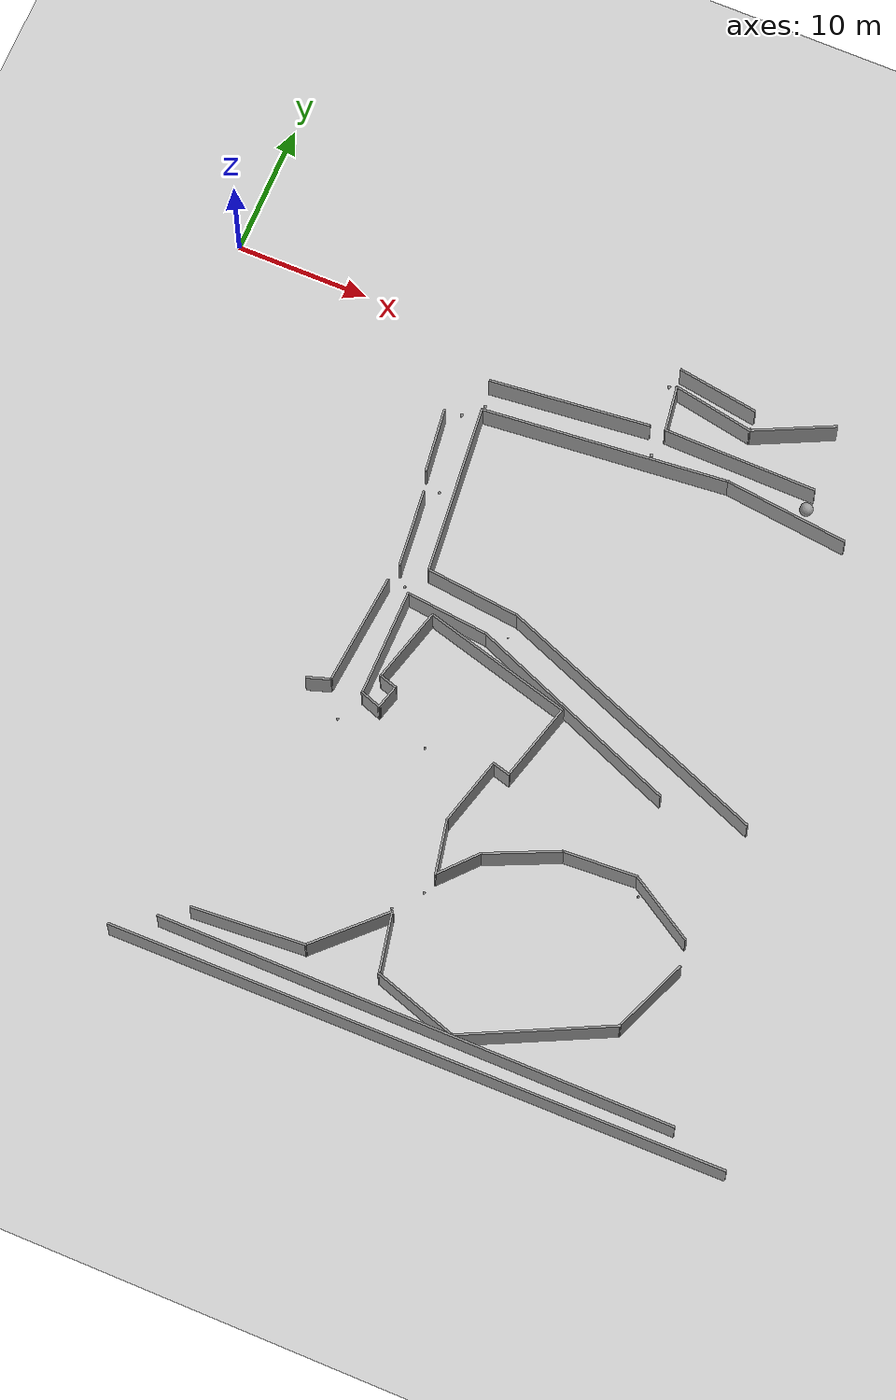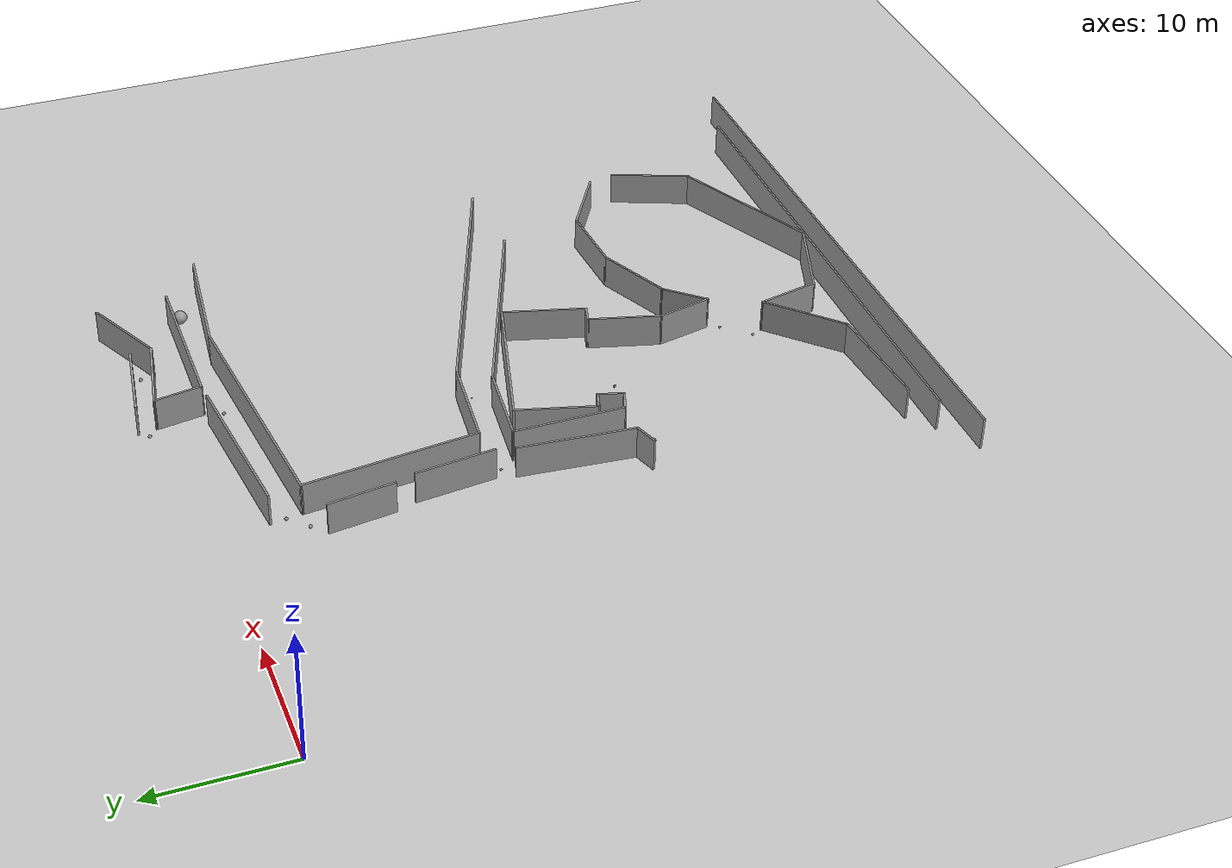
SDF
<sdf version="1.7">
 <world name="default">
  <model name="ground_plane">
   <static>1</static>
   <link name="link">
    <collision name="collision">
     <geometry><plane><normal>0 0 1</normal><size>100 100</size></plane></geometry>
     <surface><friction><ode><mu>100</mu><mu2>50</mu2></ode></friction></surface>
    </collision>
    <visual name="visual">
     <cast_shadows>0</cast_shadows>
     <geometry><plane><normal>0 0 1</normal><size>100 100</size></plane></geometry>
     <material>
      <script><uri>file://media/materials/scripts/gazebo.material</uri><name>Gazebo/Grey</name></script>
     </material>
    </visual>
   </link>
  </model>
  <model name="final_max_v1">
   <pose>-2.5231 0.6891 0 0 -0 0</pose>
   <link name="Wall_12">
    <collision name="Wall_12_Collision">
     <geometry><box><size>4.71285 0.15 2.5</size></box></geometry>
     <pose>0 0 1.25 0 -0 0</pose>
    </collision>
    <visual name="Wall_12_Visual">
     <pose>0 0 1.25 0 -0 0</pose>
     <geometry><box><size>4.71285 0.15 2.5</size></box></geometry>
     <material>
      <script><uri>file://media/materials/scripts/gazebo.material</uri><name>Gazebo/Grey</name></script>
      <ambient>1 1 1 1</ambient>
     </material>
     <meta><layer>0</layer></meta>
    </visual>
    <pose>33.7028 -45.8078 0 0 -0 -1.36194</pose>
   </link>
   <link name="Wall_13">
    <collision name="Wall_13_Collision">
     <geometry><box><size>6.84861 0.15 2.5</size></box></geometry>
     <pose>0 0 1.25 0 -0 0</pose>
    </collision>
    <visual name="Wall_13_Visual">
     <pose>0 0 1.25 0 -0 0</pose>
     <geometry><box><size>6.84861 0.15 2.5</size></box></geometry>
     <material>
      <script><uri>file://media/materials/scripts/gazebo.material</uri><name>Gazebo/Grey</name></script>
      <ambient>1 1 1 1</ambient>
     </material>
     <meta><layer>0</layer></meta>
    </visual>
    <pose>37.3584 -49.0831 0 0 -0 -0.316824</pose>
   </link>
   <link name="Wall_132">
    <collision name="Wall_132_Collision">
     <geometry><box><size>22.4626 0.15 2.5</size></box></geometry>
     <pose>0 0 1.25 0 -0 0</pose>
    </collision>
    <visual name="Wall_132_Visual">
     <pose>0 0 1.25 0 -0 0</pose>
     <geometry><box><size>22.4626 0.15 2.5</size></box></geometry>
     <material>
      <script><uri>file://media/materials/scripts/gazebo.material</uri><name>Gazebo/Grey</name></script>
      <ambient>1 1 1 1</ambient>
     </material>
     <meta><layer>0</layer></meta>
    </visual>
    <pose>43.0137 -24.0419 0 0 -0 2.77027</pose>
   </link>
   <link name="Wall_133">
    <collision name="Wall_133_Collision">
     <geometry><box><size>7.27213 0.15 2.5</size></box></geometry>
     <pose>0 0 1.25 0 -0 0</pose>
    </collision>
    <visual name="Wall_133_Visual">
     <pose>0 0 1.25 0 -0 0</pose>
     <geometry><box><size>7.27213 0.15 2.5</size></box></geometry>
     <material>
      <script><uri>file://media/materials/scripts/gazebo.material</uri><name>Gazebo/Grey</name></script>
      <ambient>1 1 1 1</ambient>
     </material>
     <meta><layer>0</layer></meta>
    </visual>
    <pose>29.0757 -19.6259 0 0 -0 3.03807</pose>
   </link>
   <link name="Wall_134">
    <collision name="Wall_134_Collision">
     <geometry><box><size>13.0122 0.15 2.5</size></box></geometry>
     <pose>0 0 1.25 0 -0 0</pose>
    </collision>
    <visual name="Wall_134_Visual">
     <pose>0 0 1.25 0 -0 0</pose>
     <geometry><box><size>13.0122 0.15 2.5</size></box></geometry>
     <material>
      <script><uri>file://media/materials/scripts/gazebo.material</uri><name>Gazebo/Grey</name></script>
      <ambient>1 1 1 1</ambient>
     </material>
     <meta><layer>0</layer></meta>
    </visual>
    <pose>24.8437 -12.8639 0 0 -0 1.67829</pose>
   </link>
   <link name="Wall_135">
    <collision name="Wall_135_Collision">
     <geometry><box><size>18.5413 0.15 2.5</size></box></geometry>
     <pose>0 0 1.25 0 -0 0</pose>
    </collision>
    <visual name="Wall_135_Visual">
     <pose>0 0 1.25 0 -0 0</pose>
     <geometry><box><size>18.5413 0.15 2.5</size></box></geometry>
     <material>
      <script><uri>file://media/materials/scripts/gazebo.material</uri><name>Gazebo/Grey</name></script>
      <ambient>1 1 1 1</ambient>
     </material>
     <meta><layer>0</layer></meta>
    </visual>
    <pose>33.3077 -5.59592 0 0 -0 0.095189</pose>
   </link>
   <link name="Wall_136">
    <collision name="Wall_136_Collision">
     <geometry><box><size>9.49695 0.15 2.5</size></box></geometry>
     <pose>0 0 1.25 0 -0 0</pose>
    </collision>
    <visual name="Wall_136_Visual">
     <pose>0 0 1.25 0 -0 0</pose>
     <geometry><box><size>9.49695 0.15 2.5</size></box></geometry>
     <material>
      <script><uri>file://media/materials/scripts/gazebo.material</uri><name>Gazebo/Grey</name></script>
      <ambient>1 1 1 1</ambient>
     </material>
     <meta><layer>0</layer></meta>
    </visual>
    <pose>47.1077 -5.22792 0 0 -0 -0.108483</pose>
   </link>
   <link name="Wall_14">
    <collision name="Wall_14_Collision">
     <geometry><box><size>11.6765 0.15 2.5</size></box></geometry>
     <pose>0 0 1.25 0 -0 0</pose>
    </collision>
    <visual name="Wall_14_Visual">
     <pose>0 0 1.25 0 -0 0</pose>
     <geometry><box><size>11.6765 0.15 2.5</size></box></geometry>
     <material>
      <script><uri>file://media/materials/scripts/gazebo.material</uri><name>Gazebo/Grey</name></script>
      <ambient>1 1 1 1</ambient>
     </material>
     <meta><layer>0</layer></meta>
    </visual>
    <pose>45.7063 -47.5701 0 0 -0 0.459599</pose>
   </link>
   <link name="Wall_15">
    <collision name="Wall_15_Collision">
     <geometry><box><size>6.09874 0.15 2.5</size></box></geometry>
     <pose>0 0 1.25 0 -0 0</pose>
    </collision>
    <visual name="Wall_15_Visual">
     <pose>0 0 1.25 0 -0 0</pose>
     <geometry><box><size>6.09874 0.15 2.5</size></box></geometry>
     <material>
      <script><uri>file://media/materials/scripts/gazebo.material</uri><name>Gazebo/Grey</name></script>
      <ambient>1 1 1 1</ambient>
     </material>
     <meta><layer>0</layer></meta>
    </visual>
    <pose>51.9671 -42.2484 0 0 -0 1.19355</pose>
   </link>
   <link name="Wall_233">
    <collision name="Wall_233_Collision">
     <geometry><box><size>12.0422 0.15 2.5</size></box></geometry>
     <pose>0 0 1.25 0 -0 0</pose>
    </collision>
    <visual name="Wall_233_Visual">
     <pose>0 0 1.25 0 -0 0</pose>
     <geometry><box><size>12.0422 0.15 2.5</size></box></geometry>
     <material>
      <script><uri>file://media/materials/scripts/gazebo.material</uri><name>Gazebo/Grey</name></script>
      <ambient>1 1 1 1</ambient>
     </material>
     <meta><layer>0</layer></meta>
    </visual>
    <pose>29.7422 -3.55323 0 0 -0 0.105489</pose>
   </link>
   <link name="Wall_300">
    <collision name="Wall_300_Collision">
     <geometry><box><size>11.627 0.15 2.5</size></box></geometry>
     <pose>0 0 1.25 0 -0 0</pose>
    </collision>
    <visual name="Wall_300_Visual">
     <pose>0 0 1.25 0 -0 0</pose>
     <geometry><box><size>11.627 0.15 2.5</size></box></geometry>
     <material>
      <script><uri>file://media/materials/scripts/gazebo.material</uri><name>Gazebo/Grey</name></script>
      <ambient>1 1 1 1</ambient>
     </material>
     <meta><layer>0</layer></meta>
    </visual>
    <pose>42.5993 -2.85617 0 0 -0 -0.009391</pose>
   </link>
   <link name="Wall_309">
    <collision name="Wall_309_Collision">
     <geometry><box><size>3.61438 0.15 2.5</size></box></geometry>
     <pose>0 0 1.25 0 -0 0</pose>
    </collision>
    <visual name="Wall_309_Visual">
     <pose>0 0 1.25 0 -0 0</pose>
     <geometry><box><size>3.61438 0.15 2.5</size></box></geometry>
     <material>
      <script><uri>file://media/materials/scripts/gazebo.material</uri><name>Gazebo/Grey</name></script>
      <ambient>1 1 1 1</ambient>
     </material>
     <meta><layer>0</layer></meta>
    </visual>
    <pose>36.5953 -1.09059 0 0 -0 -1.41679</pose>
   </link>
   <link name="Wall_31">
    <collision name="Wall_31_Collision">
     <geometry><box><size>5.7693 0.15 2.5</size></box></geometry>
     <pose>0 0 1.25 0 -0 0</pose>
    </collision>
    <visual name="Wall_31_Visual">
     <pose>0 0 1.25 0 -0 0</pose>
     <geometry><box><size>5.7693 0.15 2.5</size></box></geometry>
     <material>
      <script><uri>file://media/materials/scripts/gazebo.material</uri><name>Gazebo/Grey</name></script>
      <ambient>1 1 1 1</ambient>
     </material>
     <meta><layer>0</layer></meta>
    </visual>
    <pose>50.2454 -36.0397 0 0 -0 2.5948</pose>
   </link>
   <link name="Wall_312">
    <collision name="Wall_312_Collision">
     <geometry><box><size>6.31592 0.15 2.5</size></box></geometry>
     <pose>0 0 1.25 0 -0 0</pose>
    </collision>
    <visual name="Wall_312_Visual">
     <pose>0 0 1.25 0 -0 0</pose>
     <geometry><box><size>6.31592 0.15 2.5</size></box></geometry>
     <material>
      <script><uri>file://media/materials/scripts/gazebo.material</uri><name>Gazebo/Grey</name></script>
      <ambient>1 1 1 1</ambient>
     </material>
     <meta><layer>0</layer></meta>
    </visual>
    <pose>39.3633 0.071902 0 0 -0 -0.179095</pose>
   </link>
   <link name="Wall_313">
    <collision name="Wall_313_Collision">
     <geometry><box><size>6.37091 0.15 2.5</size></box></geometry>
     <pose>0 0 1.25 0 -0 0</pose>
    </collision>
    <visual name="Wall_313_Visual">
     <pose>0 0 1.25 0 -0 0</pose>
     <geometry><box><size>6.37091 0.15 2.5</size></box></geometry>
     <material>
      <script><uri>file://media/materials/scripts/gazebo.material</uri><name>Gazebo/Grey</name></script>
      <ambient>1 1 1 1</ambient>
     </material>
     <meta><layer>0</layer></meta>
    </visual>
    <pose>45.1939 0.883513 0 0 -0 0.45281</pose>
   </link>
   <link name="Wall_317">
    <collision name="Wall_317_Collision">
     <geometry><box><size>6.23229 0.15 2.5</size></box></geometry>
     <pose>0 0 1.25 0 -0 0</pose>
    </collision>
    <visual name="Wall_317_Visual">
     <pose>0 0 1.25 0 -0 0</pose>
     <geometry><box><size>6.23229 0.15 2.5</size></box></geometry>
     <material>
      <script><uri>file://media/materials/scripts/gazebo.material</uri><name>Gazebo/Grey</name></script>
      <ambient>1 1 1 1</ambient>
     </material>
     <meta><layer>0</layer></meta>
    </visual>
    <pose>39.1276 1.51535 0 0 -0 2.9927</pose>
   </link>
   <link name="Wall_32">
    <collision name="Wall_32_Collision">
     <geometry><box><size>5.58511 0.15 2.5</size></box></geometry>
     <pose>0 0 1.25 0 -0 0</pose>
    </collision>
    <visual name="Wall_32_Visual">
     <pose>0 0 1.25 0 -0 0</pose>
     <geometry><box><size>5.58511 0.15 2.5</size></box></geometry>
     <material>
      <script><uri>file://media/materials/scripts/gazebo.material</uri><name>Gazebo/Grey</name></script>
      <ambient>1 1 1 1</ambient>
     </material>
     <meta><layer>0</layer></meta>
    </visual>
    <pose>45.1323 -34.7353 0 0 -0 -3.08396</pose>
   </link>
   <link name="Wall_33">
    <collision name="Wall_33_Collision">
     <geometry><box><size>5.89292 0.15 2.5</size></box></geometry>
     <pose>0 0 1.25 0 -0 0</pose>
    </collision>
    <visual name="Wall_33_Visual">
     <pose>0 0 1.25 0 -0 0</pose>
     <geometry><box><size>5.89292 0.15 2.5</size></box></geometry>
     <material>
      <script><uri>file://media/materials/scripts/gazebo.material</uri><name>Gazebo/Grey</name></script>
      <ambient>1 1 1 1</ambient>
     </material>
     <meta><layer>0</layer></meta>
    </visual>
    <pose>39.8106 -36.0918 0 0 -0 -2.71045</pose>
   </link>
   <link name="Wall_34">
    <collision name="Wall_34_Collision">
     <geometry><box><size>3.62495 0.15 2.5</size></box></geometry>
     <pose>0 0 1.25 0 -0 0</pose>
    </collision>
    <visual name="Wall_34_Visual">
     <pose>0 0 1.25 0 -0 0</pose>
     <geometry><box><size>3.62495 0.15 2.5</size></box></geometry>
     <material>
      <script><uri>file://media/materials/scripts/gazebo.material</uri><name>Gazebo/Grey</name></script>
      <ambient>1 1 1 1</ambient>
     </material>
     <meta><layer>0</layer></meta>
    </visual>
    <pose>36.0541 -38.5962 0 0 -0 -2.29245</pose>
   </link>
   <link name="Wall_35">
    <collision name="Wall_35_Collision">
     <geometry><box><size>4.20214 0.15 2.5</size></box></geometry>
     <pose>0 0 1.25 0 -0 0</pose>
    </collision>
    <visual name="Wall_35_Visual">
     <pose>0 0 1.25 0 -0 0</pose>
     <geometry><box><size>4.20214 0.15 2.5</size></box></geometry>
     <material>
      <script><uri>file://media/materials/scripts/gazebo.material</uri><name>Gazebo/Grey</name></script>
      <ambient>1 1 1 1</ambient>
     </material>
     <meta><layer>0</layer></meta>
    </visual>
    <pose>34.4889 -37.9179 0 0 -0 1.77829</pose>
   </link>
   <link name="Wall_36">
    <collision name="Wall_36_Collision">
     <geometry><box><size>5.43993 0.15 2.5</size></box></geometry>
     <pose>0 0 1.25 0 -0 0</pose>
    </collision>
    <visual name="Wall_36_Visual">
     <pose>0 0 1.25 0 -0 0</pose>
     <geometry><box><size>5.43993 0.15 2.5</size></box></geometry>
     <material>
      <script><uri>file://media/materials/scripts/gazebo.material</uri><name>Gazebo/Grey</name></script>
      <ambient>1 1 1 1</ambient>
     </material>
     <meta><layer>0</layer></meta>
    </visual>
    <pose>34.7497 -33.3788 0 0 -0 1.31147</pose>
   </link>
   <link name="Wall_37">
    <collision name="Wall_37_Collision">
     <geometry><box><size>1.5 0.15 2.5</size></box></geometry>
     <pose>0 0 1.25 0 -0 0</pose>
    </collision>
    <visual name="Wall_37_Visual">
     <pose>0 0 1.25 0 -0 0</pose>
     <geometry><box><size>1.5 0.15 2.5</size></box></geometry>
     <material>
      <script><uri>file://media/materials/scripts/gazebo.material</uri><name>Gazebo/Grey</name></script>
      <ambient>1 1 1 1</ambient>
     </material>
     <meta><layer>0</layer></meta>
    </visual>
    <pose>36.08 -30.997 0 0 -0 -0.261799</pose>
   </link>
   <link name="Wall_38">
    <collision name="Wall_38_Collision">
     <geometry><box><size>6.25 0.15 2.5</size></box></geometry>
     <pose>0 0 1.25 0 -0 0</pose>
    </collision>
    <visual name="Wall_38_Visual">
     <pose>0 0 1.25 0 -0 0</pose>
     <geometry><box><size>6.25 0.15 2.5</size></box></geometry>
     <material>
      <script><uri>file://media/materials/scripts/gazebo.material</uri><name>Gazebo/Grey</name></script>
      <ambient>1 1 1 1</ambient>
     </material>
     <meta><layer>0</layer></meta>
    </visual>
    <pose>37.5214 -28.2256 0 0 -0 1.309</pose>
   </link>
   <link name="Wall_39">
    <collision name="Wall_39_Collision">
     <geometry><box><size>11.75 0.15 2.5</size></box></geometry>
     <pose>0 0 1.25 0 -0 0</pose>
    </collision>
    <visual name="Wall_39_Visual">
     <pose>0 0 1.25 0 -0 0</pose>
     <geometry><box><size>11.75 0.15 2.5</size></box></geometry>
     <material>
      <script><uri>file://media/materials/scripts/gazebo.material</uri><name>Gazebo/Grey</name></script>
      <ambient>1 1 1 1</ambient>
     </material>
     <meta><layer>0</layer></meta>
    </visual>
    <pose>32.7084 -23.7784 0 0 -0 2.87979</pose>
   </link>
   <link name="Wall_40">
    <collision name="Wall_40_Collision">
     <geometry><box><size>6 0.15 2.5</size></box></geometry>
     <pose>0 0 1.25 0 -0 0</pose>
    </collision>
    <visual name="Wall_40_Visual">
     <pose>0 0 1.25 0 -0 0</pose>
     <geometry><box><size>6 0.15 2.5</size></box></geometry>
     <material>
      <script><uri>file://media/materials/scripts/gazebo.material</uri><name>Gazebo/Grey</name></script>
      <ambient>1 1 1 1</ambient>
     </material>
     <meta><layer>0</layer></meta>
    </visual>
    <pose>26.349 -25.1026 0 0 -0 -1.8326</pose>
   </link>
   <link name="Wall_41">
    <collision name="Wall_41_Collision">
     <geometry><box><size>1.48764 0.15 2.5</size></box></geometry>
     <pose>0 0 1.25 0 -0 0</pose>
    </collision>
    <visual name="Wall_41_Visual">
     <pose>0 0 1.25 0 -0 0</pose>
     <geometry><box><size>1.48764 0.15 2.5</size></box></geometry>
     <material>
      <script><uri>file://media/materials/scripts/gazebo.material</uri><name>Gazebo/Grey</name></script>
      <ambient>1 1 1 1</ambient>
     </material>
     <meta><layer>0</layer></meta>
    </visual>
    <pose>26.2317 -28.1229 0 0 -0 -0.295878</pose>
   </link>
   <link name="Wall_42">
    <collision name="Wall_42_Collision">
     <geometry><box><size>2 0.15 2.5</size></box></geometry>
     <pose>0 0 1.25 0 -0 0</pose>
    </collision>
    <visual name="Wall_42_Visual">
     <pose>0 0 1.25 0 -0 0</pose>
     <geometry><box><size>2 0.15 2.5</size></box></geometry>
     <material>
      <script><uri>file://media/materials/scripts/gazebo.material</uri><name>Gazebo/Grey</name></script>
      <ambient>1 1 1 1</ambient>
     </material>
     <meta><layer>0</layer></meta>
    </visual>
    <pose>26.6321 -29.2114 0 0 -0 -1.8326</pose>
   </link>
   <link name="Wall_43">
    <collision name="Wall_43_Collision">
     <geometry><box><size>1.74606 0.15 2.5</size></box></geometry>
     <pose>0 0 1.25 0 -0 0</pose>
    </collision>
    <visual name="Wall_43_Visual">
     <pose>0 0 1.25 0 -0 0</pose>
     <geometry><box><size>1.74606 0.15 2.5</size></box></geometry>
     <material>
      <script><uri>file://media/materials/scripts/gazebo.material</uri><name>Gazebo/Grey</name></script>
      <ambient>1 1 1 1</ambient>
     </material>
     <meta><layer>0</layer></meta>
    </visual>
    <pose>25.6408 -29.8375 0 0 -0 2.79991</pose>
   </link>
   <link name="Wall_44">
    <collision name="Wall_44_Collision">
     <geometry><box><size>8.25 0.15 2.5</size></box></geometry>
     <pose>0 0 1.25 0 -0 0</pose>
    </collision>
    <visual name="Wall_44_Visual">
     <pose>0 0 1.25 0 -0 0</pose>
     <geometry><box><size>8.25 0.15 2.5</size></box></geometry>
     <material>
      <script><uri>file://media/materials/scripts/gazebo.material</uri><name>Gazebo/Grey</name></script>
      <ambient>1 1 1 1</ambient>
     </material>
     <meta><layer>0</layer></meta>
    </visual>
    <pose>24.8889 -25.5201 0 0 -0 1.5708</pose>
   </link>
   <link name="Wall_45">
    <collision name="Wall_45_Collision">
     <geometry><box><size>6.45508 0.15 2.5</size></box></geometry>
     <pose>0 0 1.25 0 -0 0</pose>
    </collision>
    <visual name="Wall_45_Visual">
     <pose>0 0 1.25 0 -0 0</pose>
     <geometry><box><size>6.45508 0.15 2.5</size></box></geometry>
     <material>
      <script><uri>file://media/materials/scripts/gazebo.material</uri><name>Gazebo/Grey</name></script>
      <ambient>1 1 1 1</ambient>
     </material>
     <meta><layer>0</layer></meta>
    </visual>
    <pose>28.0239 -21.8018 0 0 -0 -0.105418</pose>
   </link>
   <link name="Wall_46">
    <collision name="Wall_46_Collision">
     <geometry><box><size>17.2425 0.15 2.5</size></box></geometry>
     <pose>0 0 1.25 0 -0 0</pose>
    </collision>
    <visual name="Wall_46_Visual">
     <pose>0 0 1.25 0 -0 0</pose>
     <geometry><box><size>17.2425 0.15 2.5</size></box></geometry>
     <material>
      <script><uri>file://media/materials/scripts/gazebo.material</uri><name>Gazebo/Grey</name></script>
      <ambient>1 1 1 1</ambient>
     </material>
     <meta><layer>0</layer></meta>
    </visual>
    <pose>39.0939 -25.3075 0 0 -0 -0.380506</pose>
   </link>
   <link name="Wall_506">
    <collision name="Wall_506_Collision">
     <geometry><box><size>5.94059 0.15 2.5</size></box></geometry>
     <pose>0 0 1.25 0 -0 0</pose>
    </collision>
    <visual name="Wall_506_Visual">
     <pose>0 0 1.25 0 -0 0</pose>
     <geometry><box><size>5.94059 0.15 2.5</size></box></geometry>
     <material>
      <script><uri>file://media/materials/scripts/gazebo.material</uri><name>Gazebo/Grey</name></script>
      <ambient>1 1 1 1</ambient>
     </material>
     <meta><layer>0</layer></meta>
    </visual>
    <pose>23.1623 -16.832 0 0 -0 1.68157</pose>
   </link>
   <link name="Wall_53">
    <collision name="Wall_53_Collision">
     <geometry><box><size>46.0835 0.15 2.5</size></box></geometry>
     <pose>0 0 1.25 0 -0 0</pose>
    </collision>
    <visual name="Wall_53_Visual">
     <pose>0 0 1.25 0 -0 0</pose>
     <geometry><box><size>46.0835 0.15 2.5</size></box></geometry>
     <material>
      <script><uri>file://media/materials/scripts/gazebo.material</uri><name>Gazebo/Grey</name></script>
      <ambient>1 1 1 1</ambient>
     </material>
     <meta><layer>0</layer></meta>
    </visual>
    <pose>38.4766 -51.8722 0 0 -0 0.008638</pose>
   </link>
   <link name="Wall_543">
    <collision name="Wall_543_Collision">
     <geometry><box><size>4.94946 0.15 2.5</size></box></geometry>
     <pose>0 0 1.25 0 -0 0</pose>
    </collision>
    <visual name="Wall_543_Visual">
     <pose>0 0 1.25 0 -0 0</pose>
     <geometry><box><size>4.94946 0.15 2.5</size></box></geometry>
     <material>
      <script><uri>file://media/materials/scripts/gazebo.material</uri><name>Gazebo/Grey</name></script>
      <ambient>1 1 1 1</ambient>
     </material>
     <meta><layer>0</layer></meta>
    </visual>
    <pose>22.0244 -9.99213 0 0 -0 -1.43738</pose>
   </link>
   <link name="Wall_58">
    <collision name="Wall_58_Collision">
     <geometry><box><size>38.75 0.15 2.5</size></box></geometry>
     <pose>0 0 1.25 0 -0 0</pose>
    </collision>
    <visual name="Wall_58_Visual">
     <pose>0 0 1.25 0 -0 0</pose>
     <geometry><box><size>38.75 0.15 2.5</size></box></geometry>
     <material>
      <script><uri>file://media/materials/scripts/gazebo.material</uri><name>Gazebo/Grey</name></script>
      <ambient>1 1 1 1</ambient>
     </material>
     <meta><layer>0</layer></meta>
    </visual>
    <pose>37.7303 -50.1877 0 0 -0 0</pose>
   </link>
   <link name="Wall_8">
    <collision name="Wall_8_Collision">
     <geometry><box><size>8.5714 0.15 2.5</size></box></geometry>
     <pose>0 0 1.25 0 -0 0</pose>
    </collision>
    <visual name="Wall_8_Visual">
     <pose>0 0 1.25 0 -0 0</pose>
     <geometry><box><size>8.5714 0.15 2.5</size></box></geometry>
     <material>
      <script><uri>file://media/materials/scripts/gazebo.material</uri><name>Gazebo/Grey</name></script>
      <ambient>1 1 1 1</ambient>
     </material>
     <meta><layer>0</layer></meta>
    </visual>
    <pose>24.4698 -48.436 0 0 -0 0.071307</pose>
   </link>
   <link name="Wall_81">
    <collision name="Wall_81_Collision">
     <geometry><box><size>1.89558 0.15 2.5</size></box></geometry>
     <pose>0 0 1.25 0 -0 0</pose>
    </collision>
    <visual name="Wall_81_Visual">
     <pose>0 0 1.25 0 -0 0</pose>
     <geometry><box><size>1.89558 0.15 2.5</size></box></geometry>
     <material>
      <script><uri>file://media/materials/scripts/gazebo.material</uri><name>Gazebo/Grey</name></script>
      <ambient>1 1 1 1</ambient>
     </material>
     <meta><layer>0</layer></meta>
    </visual>
    <pose>21.6427 -29.8156 0 0 -0 0.321751</pose>
   </link>
   <link name="Wall_82">
    <collision name="Wall_82_Collision">
     <geometry><box><size>8.59623 0.15 2.5</size></box></geometry>
     <pose>0 0 1.25 0 -0 0</pose>
    </collision>
    <visual name="Wall_82_Visual">
     <pose>0 0 1.25 0 -0 0</pose>
     <geometry><box><size>8.59623 0.15 2.5</size></box></geometry>
     <material>
      <script><uri>file://media/materials/scripts/gazebo.material</uri><name>Gazebo/Grey</name></script>
      <ambient>1 1 1 1</ambient>
     </material>
     <meta><layer>0</layer></meta>
    </visual>
    <pose>22.8157 -25.3306 0 0 -0 1.48901</pose>
   </link>
   <link name="Wall_9">
    <collision name="Wall_9_Collision">
     <geometry><box><size>6.59881 0.15 2.5</size></box></geometry>
     <pose>0 0 1.25 0 -0 0</pose>
    </collision>
    <visual name="Wall_9_Visual">
     <pose>0 0 1.25 0 -0 0</pose>
     <geometry><box><size>6.59881 0.15 2.5</size></box></geometry>
     <material>
      <script><uri>file://media/materials/scripts/gazebo.material</uri><name>Gazebo/Grey</name></script>
      <ambient>1 1 1 1</ambient>
     </material>
     <meta><layer>0</layer></meta>
    </visual>
    <pose>30.9498 -45.856 0 0 -0 0.785398</pose>
   </link>
   <static>1</static>
  </model>
  <model name="id_132">
   <pose>31.8976 -40.0998 0.098466 0 -0 0</pose>
   <link name="link">
    <inertial>
     <mass>1</mass>
     <inertia><ixx>0.1</ixx><ixy>0</ixy><ixz>0</ixz><iyy>0.1</iyy><iyz>0</iyz><izz>0.1</izz></inertia>
    </inertial>
    <collision name="collision"><geometry><sphere><radius>0.0984663</radius></sphere></geometry></collision>
    <visual name="visual">
     <geometry><sphere><radius>0.0984663</radius></sphere></geometry>
     <material>
      <script><name>Gazebo/Grey</name><uri>file://media/materials/scripts/gazebo.material</uri></script>
     </material>
    </visual>
   </link>
  </model>
  <model name="id_133">
   <pose>30.2609 -42.0165 0.098466 0 -0 0</pose>
   <link name="link">
    <inertial>
     <mass>1</mass>
     <inertia><ixx>0.1</ixx><ixy>0</ixy><ixz>0</ixz><iyy>0.1</iyy><iyz>0</iyz><izz>0.1</izz></inertia>
    </inertial>
    <collision name="collision"><geometry><sphere><radius>0.0984663</radius></sphere></geometry></collision>
    <visual name="visual">
     <geometry><sphere><radius>0.0984663</radius></sphere></geometry>
     <material>
      <script><name>Gazebo/Grey</name><uri>file://media/materials/scripts/gazebo.material</uri></script>
     </material>
    </visual>
   </link>
  </model>
  <model name="id_103">
   <pose>21.1824 -30.6528 0.098466 0 -0 0</pose>
   <link name="link">
    <inertial>
     <mass>1</mass>
     <inertia><ixx>0.1</ixx><ixy>0</ixy><ixz>0</ixz><iyy>0.1</iyy><iyz>0</iyz><izz>0.1</izz></inertia>
    </inertial>
    <collision name="collision"><geometry><sphere><radius>0.0984663</radius></sphere></geometry></collision>
    <visual name="visual">
     <geometry><sphere><radius>0.0984663</radius></sphere></geometry>
     <material>
      <script><name>Gazebo/Grey</name><uri>file://media/materials/scripts/gazebo.material</uri></script>
     </material>
    </visual>
   </link>
  </model>
  <model name="id_104">
   <pose>27.7213 -30.266 0.098466 0 -0 0</pose>
   <link name="link">
    <inertial>
     <mass>1</mass>
     <inertia><ixx>0.1</ixx><ixy>0</ixy><ixz>0</ixz><iyy>0.1</iyy><iyz>0</iyz><izz>0.1</izz></inertia>
    </inertial>
    <collision name="collision"><geometry><sphere><radius>0.0984663</radius></sphere></geometry></collision>
    <visual name="visual">
     <geometry><sphere><radius>0.0984663</radius></sphere></geometry>
     <material>
      <script><name>Gazebo/Grey</name><uri>file://media/materials/scripts/gazebo.material</uri></script>
     </material>
    </visual>
   </link>
  </model>
  <model name="id_105">
   <pose>45.7492 -34.5065 0.098466 0 -0 0</pose>
   <link name="link">
    <inertial>
     <mass>1</mass>
     <inertia><ixx>0.1</ixx><ixy>0</ixy><ixz>0</ixz><iyy>0.1</iyy><iyz>0</iyz><izz>0.1</izz></inertia>
    </inertial>
    <collision name="collision"><geometry><sphere><radius>0.0984663</radius></sphere></geometry></collision>
    <visual name="visual">
     <geometry><sphere><radius>0.0984663</radius></sphere></geometry>
     <material>
      <script><name>Gazebo/Grey</name><uri>file://media/materials/scripts/gazebo.material</uri></script>
     </material>
    </visual>
   </link>
  </model>
  <model name="id_108">
   <pose>21.5771 -19.6412 0.098466 0 -0 0</pose>
   <link name="link">
    <inertial>
     <mass>1</mass>
     <inertia><ixx>0.1</ixx><ixy>0</ixy><ixz>0</ixz><iyy>0.1</iyy><iyz>0</iyz><izz>0.1</izz></inertia>
    </inertial>
    <collision name="collision"><geometry><sphere><radius>0.0984663</radius></sphere></geometry></collision>
    <visual name="visual">
     <geometry><sphere><radius>0.0984663</radius></sphere></geometry>
     <material>
      <script><name>Gazebo/Grey</name><uri>file://media/materials/scripts/gazebo.material</uri></script>
     </material>
    </visual>
   </link>
  </model>
  <model name="id_109">
   <pose>20.998 -12.0154 0.098466 0 -0 0</pose>
   <link name="link">
    <inertial>
     <mass>1</mass>
     <inertia><ixx>0.1</ixx><ixy>0</ixy><ixz>0</ixz><iyy>0.1</iyy><iyz>0</iyz><izz>0.1</izz></inertia>
    </inertial>
    <collision name="collision"><geometry><sphere><radius>0.0984663</radius></sphere></geometry></collision>
    <visual name="visual">
     <geometry><sphere><radius>0.0984663</radius></sphere></geometry>
     <material>
      <script><name>Gazebo/Grey</name><uri>file://media/materials/scripts/gazebo.material</uri></script>
     </material>
    </visual>
   </link>
  </model>
  <model name="id_20">
   <pose>20.1022 -5.89531 0.128457 0 -0 0</pose>
   <link name="link">
    <inertial>
     <mass>1</mass>
     <inertia><ixx>0.1</ixx><ixy>0</ixy><ixz>0</ixz><iyy>0.1</iyy><iyz>0</iyz><izz>0.1</izz></inertia>
    </inertial>
    <collision name="collision"><geometry><sphere><radius>0.128457</radius></sphere></geometry></collision>
    <visual name="visual">
     <geometry><sphere><radius>0.128457</radius></sphere></geometry>
     <material>
      <script><name>Gazebo/Grey</name><uri>file://media/materials/scripts/gazebo.material</uri></script>
     </material>
    </visual>
   </link>
  </model>
  <model name="id_22">
   <pose>21.3832 -4.59383 0.128457 0 -0 0</pose>
   <link name="link">
    <inertial>
     <mass>1</mass>
     <inertia><ixx>0.1</ixx><ixy>0</ixy><ixz>0</ixz><iyy>0.1</iyy><iyz>0</iyz><izz>0.1</izz></inertia>
    </inertial>
    <collision name="collision"><geometry><sphere><radius>0.128457</radius></sphere></geometry></collision>
    <visual name="visual">
     <geometry><sphere><radius>0.128457</radius></sphere></geometry>
     <material>
      <script><name>Gazebo/Grey</name><uri>file://media/materials/scripts/gazebo.material</uri></script>
     </material>
    </visual>
   </link>
  </model>
  <model name="id_23">
   <pose>33.8478 -3.43018 0.128457 0 -0 0</pose>
   <link name="link">
    <inertial>
     <mass>1</mass>
     <inertia><ixx>0.1</ixx><ixy>0</ixy><ixz>0</ixz><iyy>0.1</iyy><iyz>0</iyz><izz>0.1</izz></inertia>
    </inertial>
    <collision name="collision"><geometry><sphere><radius>0.128457</radius></sphere></geometry></collision>
    <visual name="visual">
     <geometry><sphere><radius>0.128457</radius></sphere></geometry>
     <material>
      <script><name>Gazebo/Grey</name><uri>file://media/materials/scripts/gazebo.material</uri></script>
     </material>
    </visual>
   </link>
  </model>
  <model name="id_24">
   <pose>33 2 0.128457 0 -0 0</pose>
   <link name="link">
    <inertial>
     <mass>1</mass>
     <inertia><ixx>0.1</ixx><ixy>0</ixy><ixz>0</ixz><iyy>0.1</iyy><iyz>0</iyz><izz>0.1</izz></inertia>
    </inertial>
    <collision name="collision"><geometry><sphere><radius>0.128457</radius></sphere></geometry></collision>
    <visual name="visual">
     <geometry><sphere><radius>0.128457</radius></sphere></geometry>
     <material>
      <script><name>Gazebo/Grey</name><uri>file://media/materials/scripts/gazebo.material</uri></script>
     </material>
    </visual>
   </link>
  </model>
  <model name="id_25">
   <pose>39.6286 1.21797 0.128457 0 -0 0</pose>
   <link name="link">
    <inertial>
     <mass>1</mass>
     <inertia><ixx>0.1</ixx><ixy>0</ixy><ixz>0</ixz><iyy>0.1</iyy><iyz>0</iyz><izz>0.1</izz></inertia>
    </inertial>
    <collision name="collision"><geometry><sphere><radius>0.128457</radius></sphere></geometry></collision>
    <visual name="visual">
     <geometry><sphere><radius>0.128457</radius></sphere></geometry>
     <material>
      <script><name>Gazebo/Grey</name><uri>file://media/materials/scripts/gazebo.material</uri></script>
     </material>
    </visual>
   </link>
  </model>
  <model name="id_4">
   <pose>29.8576 -20.3203 0.059356 0 -0 0</pose>
   <link name="link">
    <inertial>
     <mass>1</mass>
     <inertia><ixx>0.1</ixx><ixy>0</ixy><ixz>0</ixz><iyy>0.1</iyy><iyz>0</iyz><izz>0.1</izz></inertia>
    </inertial>
    <collision name="collision"><geometry><sphere><radius>0.059356</radius></sphere></geometry></collision>
    <visual name="visual">
     <geometry><sphere><radius>0.059356</radius></sphere></geometry>
     <material>
      <script><name>Gazebo/Grey</name><uri>file://media/materials/scripts/gazebo.material</uri></script>
     </material>
    </visual>
   </link>
  </model>
  <model name="id_98">
   <pose>45.6779 -3.06797 0.5 0 -0 0</pose>
   <link name="link">
    <inertial>
     <mass>1</mass>
     <inertia><ixx>0.1</ixx><ixy>0</ixy><ixz>0</ixz><iyy>0.1</iyy><iyz>0</iyz><izz>0.1</izz></inertia>
    </inertial>
    <collision name="collision"><geometry><sphere><radius>0.5</radius></sphere></geometry></collision>
    <visual name="visual">
     <geometry><sphere><radius>0.5</radius></sphere></geometry>
     <material>
      <script><name>Gazebo/Grey</name><uri>file://media/materials/scripts/gazebo.material</uri></script>
     </material>
    </visual>
   </link>
  </model>
 </world>
</sdf>
